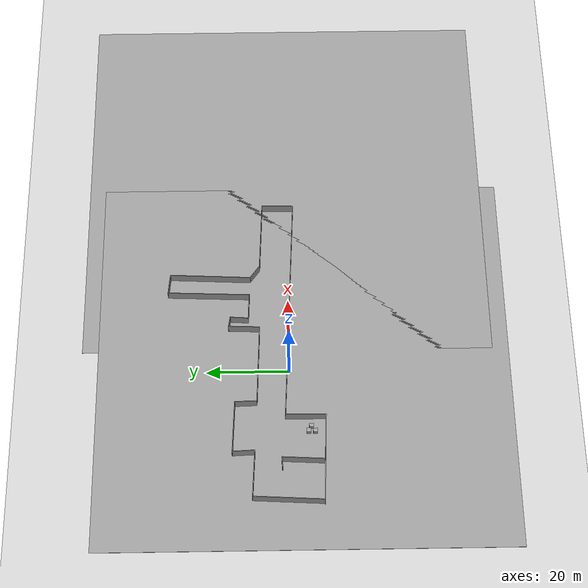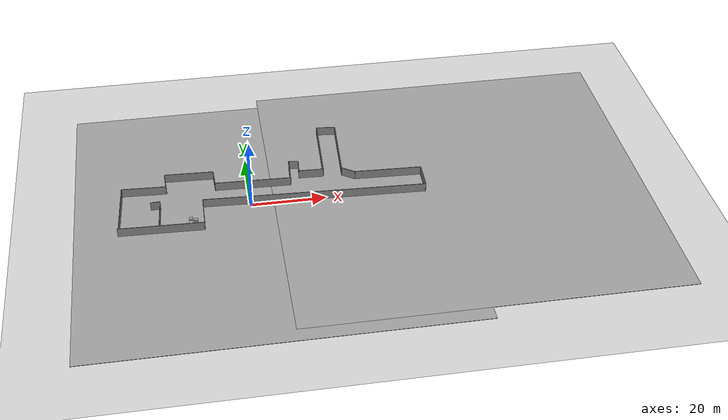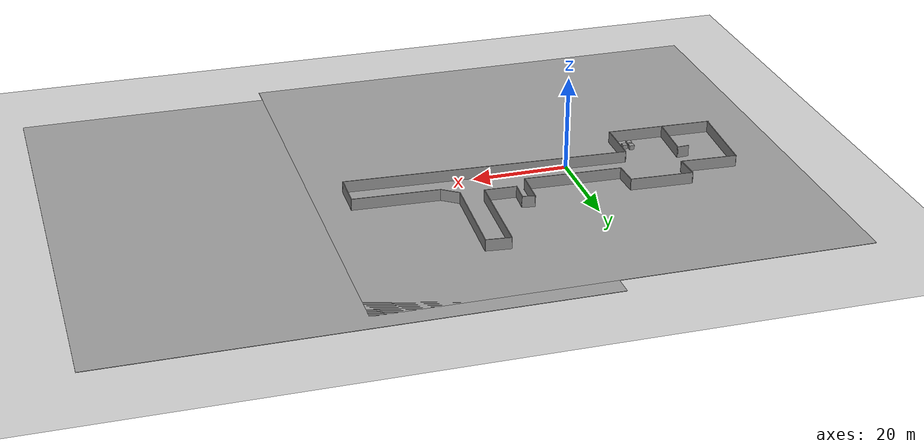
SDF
<sdf version="1.7">
 <world name="default">
  <light name="sun" type="directional">
   <pose>0 0 10 0 -0 0</pose>
   <diffuse>0.8 0.8 0.8 1</diffuse>
   <specular>0.2 0.2 0.2 1</specular>
   <attenuation>
    <range>1000</range>
    <constant>0.9</constant>
    <linear>0.01</linear>
    <quadratic>0.001</quadratic>
   </attenuation>
   <direction>-0.5 0.1 -0.9</direction>
   <spot><inner_angle>0</inner_angle><outer_angle>0</outer_angle><falloff>0</falloff></spot>
  </light>
  <model name="ground_plane">
   <pose>8 0 0 0 -0 0</pose>
   <static>1</static>
   <link name="link">
    <collision name="collision">
     <geometry><plane><normal>0 0 1</normal><size>100 100</size></plane></geometry>
     <surface><friction><ode><mu>100</mu><mu2>50</mu2></ode></friction></surface>
    </collision>
    <visual name="visual">
     <cast_shadows>0</cast_shadows>
     <geometry><plane><normal>0 0 1</normal><size>100 100</size></plane></geometry>
     <material>
      <script><uri>file://media/materials/scripts/gazebo.material</uri><name>Gazebo/Grey</name></script>
     </material>
    </visual>
   </link>
  </model>
  <gravity>0 0 -9.8</gravity>
  <magnetic_field>6e-06 2.3e-05 -4.2e-05</magnetic_field>
  <atmosphere type="adiabatic"/>
  <physics type="ode">
   <max_step_size>0.001</max_step_size>
   <real_time_factor>1</real_time_factor>
   <real_time_update_rate>1000</real_time_update_rate>
  </physics>
  <scene><ambient>0.4 0.4 0.4 1</ambient><background>0.7 0.7 0.7 1</background><shadows>1</shadows></scene>
  <audio><device>default</device></audio>
  <spherical_coordinates>
   <surface_model>EARTH_WGS84</surface_model>
   <latitude_deg>0</latitude_deg>
   <longitude_deg>0</longitude_deg>
   <elevation>0</elevation>
   <heading_deg>0</heading_deg>
  </spherical_coordinates>
  <model name="ground_plane_0">
   <static>1</static>
   <link name="link">
    <collision name="collision">
     <geometry><plane><normal>0 0 1</normal><size>100 100</size></plane></geometry>
     <surface><friction><ode><mu>100</mu><mu2>50</mu2></ode></friction></surface>
    </collision>
    <visual name="visual">
     <cast_shadows>0</cast_shadows>
     <geometry><plane><normal>0 0 1</normal><size>100 100</size></plane></geometry>
     <material>
      <script><uri>file://media/materials/scripts/gazebo.material</uri><name>Gazebo/Grey</name></script>
     </material>
    </visual>
   </link>
   <pose>56 0.336309 0 0 -0 0</pose>
  </model>
  <model name="L1building">
   <link name="Wall_0">
    <pose>-40.3079 -9.93824 0 0 -0 1.51317</pose>
    <visual name="Wall_0_Visual">
     <pose>0 0 1.25 0 -0 0</pose>
     <geometry><box><size>16.9123 0.15 2.5</size></box></geometry>
     <material>
      <script><uri>file://media/materials/scripts/gazebo.material</uri><name>Gazebo/Grey</name></script>
      <ambient>1 1 1 1</ambient>
      <shader type="pixel"/>
     </material>
     <meta><layer>0</layer></meta>
    </visual>
    <collision name="Wall_0_Collision">
     <pose>0 0 1.25 0 -0 0</pose>
     <geometry><box><size>16.9123 0.15 2.5</size></box></geometry>
     <surface>
      <friction>
       <ode><mu>1</mu><mu2>1</mu2><fdir1>0 0 0</fdir1><slip1>0</slip1><slip2>0</slip2></ode>
       <torsional>
        <coefficient>1</coefficient>
        <patch_radius>0</patch_radius>
        <surface_radius>0</surface_radius>
        <use_patch_radius>1</use_patch_radius>
        <ode><slip>0</slip></ode>
       </torsional>
      </friction>
      <bounce><restitution_coefficient>0</restitution_coefficient><threshold>1e+06</threshold></bounce>
      <contact>
       <collide_without_contact>0</collide_without_contact>
       <collide_without_contact_bitmask>1</collide_without_contact_bitmask>
       <collide_bitmask>1</collide_bitmask>
       <ode>
        <soft_cfm>0</soft_cfm>
        <soft_erp>0.2</soft_erp>
        <kp>1e+13</kp>
        <kd>1</kd>
        <max_vel>0.01</max_vel>
        <min_depth>0</min_depth>
       </ode>
       <bullet>
        <split_impulse>1</split_impulse>
        <split_impulse_penetration_threshold>-0.01</split_impulse_penetration_threshold>
        <soft_cfm>0</soft_cfm>
        <soft_erp>0.2</soft_erp>
        <kp>1e+13</kp>
        <kd>1</kd>
       </bullet>
      </contact>
     </surface>
    </collision>
   </link>
   <link name="Wall_1">
    <pose>-33.9118 -1.85259 0 0 0 -0.047583</pose>
    <visual name="Wall_1_Visual">
     <pose>0 0 1.25 0 -0 0</pose>
     <geometry><box><size>11.9902 0.15 2.5</size></box></geometry>
     <material>
      <script><uri>file://media/materials/scripts/gazebo.material</uri><name>Gazebo/Grey</name></script>
      <ambient>1 1 1 1</ambient>
      <shader type="pixel"/>
     </material>
     <meta><layer>0</layer></meta>
    </visual>
    <collision name="Wall_1_Collision">
     <pose>0 0 1.25 0 -0 0</pose>
     <geometry><box><size>11.9902 0.15 2.5</size></box></geometry>
     <surface>
      <friction>
       <ode><mu>1</mu><mu2>1</mu2><fdir1>0 0 0</fdir1><slip1>0</slip1><slip2>0</slip2></ode>
       <torsional>
        <coefficient>1</coefficient>
        <patch_radius>0</patch_radius>
        <surface_radius>0</surface_radius>
        <use_patch_radius>1</use_patch_radius>
        <ode><slip>0</slip></ode>
       </torsional>
      </friction>
      <bounce><restitution_coefficient>0</restitution_coefficient><threshold>1e+06</threshold></bounce>
      <contact>
       <collide_without_contact>0</collide_without_contact>
       <collide_without_contact_bitmask>1</collide_without_contact_bitmask>
       <collide_bitmask>1</collide_bitmask>
       <ode>
        <soft_cfm>0</soft_cfm>
        <soft_erp>0.2</soft_erp>
        <kp>1e+13</kp>
        <kd>1</kd>
        <max_vel>0.01</max_vel>
        <min_depth>0</min_depth>
       </ode>
       <bullet>
        <split_impulse>1</split_impulse>
        <split_impulse_penetration_threshold>-0.01</split_impulse_penetration_threshold>
        <soft_cfm>0</soft_cfm>
        <soft_erp>0.2</soft_erp>
        <kp>1e+13</kp>
        <kd>1</kd>
       </bullet>
      </contact>
     </surface>
    </collision>
   </link>
   <link name="Wall_10">
    <pose>15.0447 9.0892 0 0 -0 1.53066</pose>
    <visual name="Wall_10_Visual">
     <pose>0 0 1.25 0 -0 0</pose>
     <geometry><box><size>20.1993 0.15 2.5</size></box></geometry>
     <material>
      <script><uri>file://media/materials/scripts/gazebo.material</uri><name>Gazebo/Grey</name></script>
      <ambient>1 1 1 1</ambient>
      <shader type="pixel"/>
     </material>
     <meta><layer>0</layer></meta>
    </visual>
    <collision name="Wall_10_Collision">
     <pose>0 0 1.25 0 -0 0</pose>
     <geometry><box><size>20.1993 0.15 2.5</size></box></geometry>
     <surface>
      <friction>
       <ode><mu>1</mu><mu2>1</mu2><fdir1>0 0 0</fdir1><slip1>0</slip1><slip2>0</slip2></ode>
       <torsional>
        <coefficient>1</coefficient>
        <patch_radius>0</patch_radius>
        <surface_radius>0</surface_radius>
        <use_patch_radius>1</use_patch_radius>
        <ode><slip>0</slip></ode>
       </torsional>
      </friction>
      <bounce><restitution_coefficient>0</restitution_coefficient><threshold>1e+06</threshold></bounce>
      <contact>
       <collide_without_contact>0</collide_without_contact>
       <collide_without_contact_bitmask>1</collide_without_contact_bitmask>
       <collide_bitmask>1</collide_bitmask>
       <ode>
        <soft_cfm>0</soft_cfm>
        <soft_erp>0.2</soft_erp>
        <kp>1e+13</kp>
        <kd>1</kd>
        <max_vel>0.01</max_vel>
        <min_depth>0</min_depth>
       </ode>
       <bullet>
        <split_impulse>1</split_impulse>
        <split_impulse_penetration_threshold>-0.01</split_impulse_penetration_threshold>
        <soft_cfm>0</soft_cfm>
        <soft_erp>0.2</soft_erp>
        <kp>1e+13</kp>
        <kd>1</kd>
       </bullet>
      </contact>
     </surface>
    </collision>
   </link>
   <link name="Wall_11">
    <pose>18.0215 18.8644 0 0 0 -0.093477</pose>
    <visual name="Wall_11_Visual">
     <pose>0 0 1.25 0 -0 0</pose>
     <geometry><box><size>5.32165 0.15 2.5</size></box></geometry>
     <material>
      <script><uri>file://media/materials/scripts/gazebo.material</uri><name>Gazebo/Grey</name></script>
      <ambient>1 1 1 1</ambient>
      <shader type="pixel"/>
     </material>
     <meta><layer>0</layer></meta>
    </visual>
    <collision name="Wall_11_Collision">
     <pose>0 0 1.25 0 -0 0</pose>
     <geometry><box><size>5.32165 0.15 2.5</size></box></geometry>
     <surface>
      <friction>
       <ode><mu>1</mu><mu2>1</mu2><fdir1>0 0 0</fdir1><slip1>0</slip1><slip2>0</slip2></ode>
       <torsional>
        <coefficient>1</coefficient>
        <patch_radius>0</patch_radius>
        <surface_radius>0</surface_radius>
        <use_patch_radius>1</use_patch_radius>
        <ode><slip>0</slip></ode>
       </torsional>
      </friction>
      <bounce><restitution_coefficient>0</restitution_coefficient><threshold>1e+06</threshold></bounce>
      <contact>
       <collide_without_contact>0</collide_without_contact>
       <collide_without_contact_bitmask>1</collide_without_contact_bitmask>
       <collide_bitmask>1</collide_bitmask>
       <ode>
        <soft_cfm>0</soft_cfm>
        <soft_erp>0.2</soft_erp>
        <kp>1e+13</kp>
        <kd>1</kd>
        <max_vel>0.01</max_vel>
        <min_depth>0</min_depth>
       </ode>
       <bullet>
        <split_impulse>1</split_impulse>
        <split_impulse_penetration_threshold>-0.01</split_impulse_penetration_threshold>
        <soft_cfm>0</soft_cfm>
        <soft_erp>0.2</soft_erp>
        <kp>1e+13</kp>
        <kd>1</kd>
       </bullet>
      </contact>
     </surface>
    </collision>
   </link>
   <link name="Wall_12">
    <pose>20.1133 8.72715 0 0 0 -1.61954</pose>
    <visual name="Wall_12_Visual">
     <pose>0 0 1.25 0 -0 0</pose>
     <geometry><box><size>19.9653 0.15 2.5</size></box></geometry>
     <material>
      <script><uri>file://media/materials/scripts/gazebo.material</uri><name>Gazebo/Grey</name></script>
      <ambient>1 1 1 1</ambient>
      <shader type="pixel"/>
     </material>
     <meta><layer>0</layer></meta>
    </visual>
    <collision name="Wall_12_Collision">
     <pose>0 0 1.25 0 -0 0</pose>
     <geometry><box><size>19.9653 0.15 2.5</size></box></geometry>
     <surface>
      <friction>
       <ode><mu>1</mu><mu2>1</mu2><fdir1>0 0 0</fdir1><slip1>0</slip1><slip2>0</slip2></ode>
       <torsional>
        <coefficient>1</coefficient>
        <patch_radius>0</patch_radius>
        <surface_radius>0</surface_radius>
        <use_patch_radius>1</use_patch_radius>
        <ode><slip>0</slip></ode>
       </torsional>
      </friction>
      <bounce><restitution_coefficient>0</restitution_coefficient><threshold>1e+06</threshold></bounce>
      <contact>
       <collide_without_contact>0</collide_without_contact>
       <collide_without_contact_bitmask>1</collide_without_contact_bitmask>
       <collide_bitmask>1</collide_bitmask>
       <ode>
        <soft_cfm>0</soft_cfm>
        <soft_erp>0.2</soft_erp>
        <kp>1e+13</kp>
        <kd>1</kd>
        <max_vel>0.01</max_vel>
        <min_depth>0</min_depth>
       </ode>
       <bullet>
        <split_impulse>1</split_impulse>
        <split_impulse_penetration_threshold>-0.01</split_impulse_penetration_threshold>
        <soft_cfm>0</soft_cfm>
        <soft_erp>0.2</soft_erp>
        <kp>1e+13</kp>
        <kd>1</kd>
       </bullet>
      </contact>
     </surface>
    </collision>
   </link>
   <link name="Wall_13">
    <pose>21.2799 -2.33531 0 0 0 -0.61562</pose>
    <visual name="Wall_13_Visual">
     <pose>0 0 1.25 0 -0 0</pose>
     <geometry><box><size>4.19038 0.15 2.5</size></box></geometry>
     <material>
      <script><uri>file://media/materials/scripts/gazebo.material</uri><name>Gazebo/Grey</name></script>
      <ambient>1 1 1 1</ambient>
      <shader type="pixel"/>
     </material>
     <meta><layer>0</layer></meta>
    </visual>
    <collision name="Wall_13_Collision">
     <pose>0 0 1.25 0 -0 0</pose>
     <geometry><box><size>4.19038 0.15 2.5</size></box></geometry>
     <surface>
      <friction>
       <ode><mu>1</mu><mu2>1</mu2><fdir1>0 0 0</fdir1><slip1>0</slip1><slip2>0</slip2></ode>
       <torsional>
        <coefficient>1</coefficient>
        <patch_radius>0</patch_radius>
        <surface_radius>0</surface_radius>
        <use_patch_radius>1</use_patch_radius>
        <ode><slip>0</slip></ode>
       </torsional>
      </friction>
      <bounce><restitution_coefficient>0</restitution_coefficient><threshold>1e+06</threshold></bounce>
      <contact>
       <collide_without_contact>0</collide_without_contact>
       <collide_without_contact_bitmask>1</collide_without_contact_bitmask>
       <collide_bitmask>1</collide_bitmask>
       <ode>
        <soft_cfm>0</soft_cfm>
        <soft_erp>0.2</soft_erp>
        <kp>1e+13</kp>
        <kd>1</kd>
        <max_vel>0.01</max_vel>
        <min_depth>0</min_depth>
       </ode>
       <bullet>
        <split_impulse>1</split_impulse>
        <split_impulse_penetration_threshold>-0.01</split_impulse_penetration_threshold>
        <soft_cfm>0</soft_cfm>
        <soft_erp>0.2</soft_erp>
        <kp>1e+13</kp>
        <kd>1</kd>
       </bullet>
      </contact>
     </surface>
    </collision>
   </link>
   <link name="Wall_14">
    <pose>31.9803 -3.86394 0 0 0 -0.039979</pose>
    <visual name="Wall_14_Visual">
     <pose>0 0 1.25 0 -0 0</pose>
     <geometry><box><size>18.2667 0.15 2.5</size></box></geometry>
     <material>
      <script><uri>file://media/materials/scripts/gazebo.material</uri><name>Gazebo/Grey</name></script>
      <ambient>1 1 1 1</ambient>
      <shader type="pixel"/>
     </material>
     <meta><layer>0</layer></meta>
    </visual>
    <collision name="Wall_14_Collision">
     <pose>0 0 1.25 0 -0 0</pose>
     <geometry><box><size>18.2667 0.15 2.5</size></box></geometry>
     <surface>
      <friction>
       <ode><mu>1</mu><mu2>1</mu2><fdir1>0 0 0</fdir1><slip1>0</slip1><slip2>0</slip2></ode>
       <torsional>
        <coefficient>1</coefficient>
        <patch_radius>0</patch_radius>
        <surface_radius>0</surface_radius>
        <use_patch_radius>1</use_patch_radius>
        <ode><slip>0</slip></ode>
       </torsional>
      </friction>
      <bounce><restitution_coefficient>0</restitution_coefficient><threshold>1e+06</threshold></bounce>
      <contact>
       <collide_without_contact>0</collide_without_contact>
       <collide_without_contact_bitmask>1</collide_without_contact_bitmask>
       <collide_bitmask>1</collide_bitmask>
       <ode>
        <soft_cfm>0</soft_cfm>
        <soft_erp>0.2</soft_erp>
        <kp>1e+13</kp>
        <kd>1</kd>
        <max_vel>0.01</max_vel>
        <min_depth>0</min_depth>
       </ode>
       <bullet>
        <split_impulse>1</split_impulse>
        <split_impulse_penetration_threshold>-0.01</split_impulse_penetration_threshold>
        <soft_cfm>0</soft_cfm>
        <soft_erp>0.2</soft_erp>
        <kp>1e+13</kp>
        <kd>1</kd>
       </bullet>
      </contact>
     </surface>
    </collision>
   </link>
   <link name="Wall_15">
    <pose>40.951 -8.12802 0 0 0 -1.59141</pose>
    <visual name="Wall_15_Visual">
     <pose>0 0 1.25 0 -0 0</pose>
     <geometry><box><size>7.95573 0.15 2.5</size></box></geometry>
     <material>
      <script><uri>file://media/materials/scripts/gazebo.material</uri><name>Gazebo/Grey</name></script>
      <ambient>1 1 1 1</ambient>
      <shader type="pixel"/>
     </material>
     <meta><layer>0</layer></meta>
    </visual>
    <collision name="Wall_15_Collision">
     <pose>0 0 1.25 0 -0 0</pose>
     <geometry><box><size>7.95573 0.15 2.5</size></box></geometry>
     <surface>
      <friction>
       <ode><mu>1</mu><mu2>1</mu2><fdir1>0 0 0</fdir1><slip1>0</slip1><slip2>0</slip2></ode>
       <torsional>
        <coefficient>1</coefficient>
        <patch_radius>0</patch_radius>
        <surface_radius>0</surface_radius>
        <use_patch_radius>1</use_patch_radius>
        <ode><slip>0</slip></ode>
       </torsional>
      </friction>
      <bounce><restitution_coefficient>0</restitution_coefficient><threshold>1e+06</threshold></bounce>
      <contact>
       <collide_without_contact>0</collide_without_contact>
       <collide_without_contact_bitmask>1</collide_without_contact_bitmask>
       <collide_bitmask>1</collide_bitmask>
       <ode>
        <soft_cfm>0</soft_cfm>
        <soft_erp>0.2</soft_erp>
        <kp>1e+13</kp>
        <kd>1</kd>
        <max_vel>0.01</max_vel>
        <min_depth>0</min_depth>
       </ode>
       <bullet>
        <split_impulse>1</split_impulse>
        <split_impulse_penetration_threshold>-0.01</split_impulse_penetration_threshold>
        <soft_cfm>0</soft_cfm>
        <soft_erp>0.2</soft_erp>
        <kp>1e+13</kp>
        <kd>1</kd>
       </bullet>
      </contact>
     </surface>
    </collision>
   </link>
   <link name="Wall_16">
    <pose>11.1024 -10.7428 0 0 -0 3.09838</pose>
    <visual name="Wall_16_Visual">
     <pose>0 0 1.25 0 -0 0</pose>
     <geometry><box><size>59.7418 0.15 2.5</size></box></geometry>
     <material>
      <script><uri>file://media/materials/scripts/gazebo.material</uri><name>Gazebo/Grey</name></script>
      <ambient>1 1 1 1</ambient>
      <shader type="pixel"/>
     </material>
     <meta><layer>0</layer></meta>
    </visual>
    <collision name="Wall_16_Collision">
     <pose>0 0 1.25 0 -0 0</pose>
     <geometry><box><size>59.7418 0.15 2.5</size></box></geometry>
     <surface>
      <friction>
       <ode><mu>1</mu><mu2>1</mu2><fdir1>0 0 0</fdir1><slip1>0</slip1><slip2>0</slip2></ode>
       <torsional>
        <coefficient>1</coefficient>
        <patch_radius>0</patch_radius>
        <surface_radius>0</surface_radius>
        <use_patch_radius>1</use_patch_radius>
        <ode><slip>0</slip></ode>
       </torsional>
      </friction>
      <bounce><restitution_coefficient>0</restitution_coefficient><threshold>1e+06</threshold></bounce>
      <contact>
       <collide_without_contact>0</collide_without_contact>
       <collide_without_contact_bitmask>1</collide_without_contact_bitmask>
       <collide_bitmask>1</collide_bitmask>
       <ode>
        <soft_cfm>0</soft_cfm>
        <soft_erp>0.2</soft_erp>
        <kp>1e+13</kp>
        <kd>1</kd>
        <max_vel>0.01</max_vel>
        <min_depth>0</min_depth>
       </ode>
       <bullet>
        <split_impulse>1</split_impulse>
        <split_impulse_penetration_threshold>-0.01</split_impulse_penetration_threshold>
        <soft_cfm>0</soft_cfm>
        <soft_erp>0.2</soft_erp>
        <kp>1e+13</kp>
        <kd>1</kd>
       </bullet>
      </contact>
     </surface>
    </collision>
   </link>
   <link name="Wall_17">
    <pose>-18.7059 -14.2828 0 0 0 -1.57913</pose>
    <visual name="Wall_17_Visual">
     <pose>0 0 1.25 0 -0 0</pose>
     <geometry><box><size>9.80485 0.15 2.5</size></box></geometry>
     <material>
      <script><uri>file://media/materials/scripts/gazebo.material</uri><name>Gazebo/Grey</name></script>
      <ambient>1 1 1 1</ambient>
      <shader type="pixel"/>
     </material>
     <meta><layer>0</layer></meta>
    </visual>
    <collision name="Wall_17_Collision">
     <pose>0 0 1.25 0 -0 0</pose>
     <geometry><box><size>9.80485 0.15 2.5</size></box></geometry>
     <surface>
      <friction>
       <ode><mu>1</mu><mu2>1</mu2><fdir1>0 0 0</fdir1><slip1>0</slip1><slip2>0</slip2></ode>
       <torsional>
        <coefficient>1</coefficient>
        <patch_radius>0</patch_radius>
        <surface_radius>0</surface_radius>
        <use_patch_radius>1</use_patch_radius>
        <ode><slip>0</slip></ode>
       </torsional>
      </friction>
      <bounce><restitution_coefficient>0</restitution_coefficient><threshold>1e+06</threshold></bounce>
      <contact>
       <collide_without_contact>0</collide_without_contact>
       <collide_without_contact_bitmask>1</collide_without_contact_bitmask>
       <collide_bitmask>1</collide_bitmask>
       <ode>
        <soft_cfm>0</soft_cfm>
        <soft_erp>0.2</soft_erp>
        <kp>1e+13</kp>
        <kd>1</kd>
        <max_vel>0.01</max_vel>
        <min_depth>0</min_depth>
       </ode>
       <bullet>
        <split_impulse>1</split_impulse>
        <split_impulse_penetration_threshold>-0.01</split_impulse_penetration_threshold>
        <soft_cfm>0</soft_cfm>
        <soft_erp>0.2</soft_erp>
        <kp>1e+13</kp>
        <kd>1</kd>
       </bullet>
      </contact>
     </surface>
    </collision>
   </link>
   <link name="Wall_18">
    <pose>-29.889 -18.748 0 0 -0 3.10911</pose>
    <visual name="Wall_18_Visual">
     <pose>0 0 1.25 0 -0 0</pose>
     <geometry><box><size>22.4476 0.15 2.5</size></box></geometry>
     <material>
      <script><uri>file://media/materials/scripts/gazebo.material</uri><name>Gazebo/Grey</name></script>
      <ambient>1 1 1 1</ambient>
      <shader type="pixel"/>
     </material>
     <meta><layer>0</layer></meta>
    </visual>
    <collision name="Wall_18_Collision">
     <pose>0 0 1.25 0 -0 0</pose>
     <geometry><box><size>22.4476 0.15 2.5</size></box></geometry>
     <surface>
      <friction>
       <ode><mu>1</mu><mu2>1</mu2><fdir1>0 0 0</fdir1><slip1>0</slip1><slip2>0</slip2></ode>
       <torsional>
        <coefficient>1</coefficient>
        <patch_radius>0</patch_radius>
        <surface_radius>0</surface_radius>
        <use_patch_radius>1</use_patch_radius>
        <ode><slip>0</slip></ode>
       </torsional>
      </friction>
      <bounce><restitution_coefficient>0</restitution_coefficient><threshold>1e+06</threshold></bounce>
      <contact>
       <collide_without_contact>0</collide_without_contact>
       <collide_without_contact_bitmask>1</collide_without_contact_bitmask>
       <collide_bitmask>1</collide_bitmask>
       <ode>
        <soft_cfm>0</soft_cfm>
        <soft_erp>0.2</soft_erp>
        <kp>1e+13</kp>
        <kd>1</kd>
        <max_vel>0.01</max_vel>
        <min_depth>0</min_depth>
       </ode>
       <bullet>
        <split_impulse>1</split_impulse>
        <split_impulse_penetration_threshold>-0.01</split_impulse_penetration_threshold>
        <soft_cfm>0</soft_cfm>
        <soft_erp>0.2</soft_erp>
        <kp>1e+13</kp>
        <kd>1</kd>
       </bullet>
      </contact>
     </surface>
    </collision>
   </link>
   <link name="Wall_2">
    <pose>-28.119 0.520815 0 0 -0 1.61622</pose>
    <visual name="Wall_2_Visual">
     <pose>0 0 1.25 0 -0 0</pose>
     <geometry><box><size>5.46547 0.15 2.5</size></box></geometry>
     <material>
      <script><uri>file://media/materials/scripts/gazebo.material</uri><name>Gazebo/Grey</name></script>
      <ambient>1 1 1 1</ambient>
      <shader type="pixel"/>
     </material>
     <meta><layer>0</layer></meta>
    </visual>
    <collision name="Wall_2_Collision">
     <pose>0 0 1.25 0 -0 0</pose>
     <geometry><box><size>5.46547 0.15 2.5</size></box></geometry>
     <surface>
      <friction>
       <ode><mu>1</mu><mu2>1</mu2><fdir1>0 0 0</fdir1><slip1>0</slip1><slip2>0</slip2></ode>
       <torsional>
        <coefficient>1</coefficient>
        <patch_radius>0</patch_radius>
        <surface_radius>0</surface_radius>
        <use_patch_radius>1</use_patch_radius>
        <ode><slip>0</slip></ode>
       </torsional>
      </friction>
      <bounce><restitution_coefficient>0</restitution_coefficient><threshold>1e+06</threshold></bounce>
      <contact>
       <collide_without_contact>0</collide_without_contact>
       <collide_without_contact_bitmask>1</collide_without_contact_bitmask>
       <collide_bitmask>1</collide_bitmask>
       <ode>
        <soft_cfm>0</soft_cfm>
        <soft_erp>0.2</soft_erp>
        <kp>1e+13</kp>
        <kd>1</kd>
        <max_vel>0.01</max_vel>
        <min_depth>0</min_depth>
       </ode>
       <bullet>
        <split_impulse>1</split_impulse>
        <split_impulse_penetration_threshold>-0.01</split_impulse_penetration_threshold>
        <soft_cfm>0</soft_cfm>
        <soft_erp>0.2</soft_erp>
        <kp>1e+13</kp>
        <kd>1</kd>
       </bullet>
      </contact>
     </surface>
    </collision>
   </link>
   <link name="Wall_20">
    <pose>-30.1304 -13.5185 0 0 -0 1.51486</pose>
    <visual name="Wall_20_Visual">
     <pose>0 0 1.25 0 -0 0</pose>
     <geometry><box><size>10.2225 0.15 2.5</size></box></geometry>
     <material>
      <script><uri>file://media/materials/scripts/gazebo.material</uri><name>Gazebo/Grey</name></script>
      <ambient>1 1 1 1</ambient>
      <shader type="pixel"/>
     </material>
     <meta><layer>0</layer></meta>
    </visual>
    <collision name="Wall_20_Collision">
     <pose>0 0 1.25 0 -0 0</pose>
     <geometry><box><size>10.2225 0.15 2.5</size></box></geometry>
     <surface>
      <friction>
       <ode><mu>1</mu><mu2>1</mu2><fdir1>0 0 0</fdir1><slip1>0</slip1><slip2>0</slip2></ode>
       <torsional>
        <coefficient>1</coefficient>
        <patch_radius>0</patch_radius>
        <surface_radius>0</surface_radius>
        <use_patch_radius>1</use_patch_radius>
        <ode><slip>0</slip></ode>
       </torsional>
      </friction>
      <bounce><restitution_coefficient>0</restitution_coefficient><threshold>1e+06</threshold></bounce>
      <contact>
       <collide_without_contact>0</collide_without_contact>
       <collide_without_contact_bitmask>1</collide_without_contact_bitmask>
       <collide_bitmask>1</collide_bitmask>
       <ode>
        <soft_cfm>0</soft_cfm>
        <soft_erp>0.2</soft_erp>
        <kp>1e+13</kp>
        <kd>1</kd>
        <max_vel>0.01</max_vel>
        <min_depth>0</min_depth>
       </ode>
       <bullet>
        <split_impulse>1</split_impulse>
        <split_impulse_penetration_threshold>-0.01</split_impulse_penetration_threshold>
        <soft_cfm>0</soft_cfm>
        <soft_erp>0.2</soft_erp>
        <kp>1e+13</kp>
        <kd>1</kd>
       </bullet>
      </contact>
     </surface>
    </collision>
   </link>
   <link name="Wall_21">
    <pose>-31.0556 -8.57052 0 0 0 -3.07502</pose>
    <visual name="Wall_21_Visual">
     <pose>0 0 1.25 0 -0 0</pose>
     <geometry><box><size>2.56899 0.15 2.5</size></box></geometry>
     <material>
      <script><uri>file://media/materials/scripts/gazebo.material</uri><name>Gazebo/Grey</name></script>
      <ambient>1 1 1 1</ambient>
      <shader type="pixel"/>
     </material>
     <meta><layer>0</layer></meta>
    </visual>
    <collision name="Wall_21_Collision">
     <pose>0 0 1.25 0 -0 0</pose>
     <geometry><box><size>2.56899 0.15 2.5</size></box></geometry>
     <surface>
      <friction>
       <ode><mu>1</mu><mu2>1</mu2><fdir1>0 0 0</fdir1><slip1>0</slip1><slip2>0</slip2></ode>
       <torsional>
        <coefficient>1</coefficient>
        <patch_radius>0</patch_radius>
        <surface_radius>0</surface_radius>
        <use_patch_radius>1</use_patch_radius>
        <ode><slip>0</slip></ode>
       </torsional>
      </friction>
      <bounce><restitution_coefficient>0</restitution_coefficient><threshold>1e+06</threshold></bounce>
      <contact>
       <collide_without_contact>0</collide_without_contact>
       <collide_without_contact_bitmask>1</collide_without_contact_bitmask>
       <collide_bitmask>1</collide_bitmask>
       <ode>
        <soft_cfm>0</soft_cfm>
        <soft_erp>0.2</soft_erp>
        <kp>1e+13</kp>
        <kd>1</kd>
        <max_vel>0.01</max_vel>
        <min_depth>0</min_depth>
       </ode>
       <bullet>
        <split_impulse>1</split_impulse>
        <split_impulse_penetration_threshold>-0.01</split_impulse_penetration_threshold>
        <soft_cfm>0</soft_cfm>
        <soft_erp>0.2</soft_erp>
        <kp>1e+13</kp>
        <kd>1</kd>
       </bullet>
      </contact>
     </surface>
    </collision>
   </link>
   <link name="Wall_3">
    <pose>-21.6827 2.89422 0 0 0 -0.042918</pose>
    <visual name="Wall_3_Visual">
     <pose>0 0 1.25 0 -0 0</pose>
     <geometry><box><size>13.2761 0.15 2.5</size></box></geometry>
     <material>
      <script><uri>file://media/materials/scripts/gazebo.material</uri><name>Gazebo/Grey</name></script>
      <ambient>1 1 1 1</ambient>
      <shader type="pixel"/>
     </material>
     <meta><layer>0</layer></meta>
    </visual>
    <collision name="Wall_3_Collision">
     <pose>0 0 1.25 0 -0 0</pose>
     <geometry><box><size>13.2761 0.15 2.5</size></box></geometry>
     <surface>
      <friction>
       <ode><mu>1</mu><mu2>1</mu2><fdir1>0 0 0</fdir1><slip1>0</slip1><slip2>0</slip2></ode>
       <torsional>
        <coefficient>1</coefficient>
        <patch_radius>0</patch_radius>
        <surface_radius>0</surface_radius>
        <use_patch_radius>1</use_patch_radius>
        <ode><slip>0</slip></ode>
       </torsional>
      </friction>
      <bounce><restitution_coefficient>0</restitution_coefficient><threshold>1e+06</threshold></bounce>
      <contact>
       <collide_without_contact>0</collide_without_contact>
       <collide_without_contact_bitmask>1</collide_without_contact_bitmask>
       <collide_bitmask>1</collide_bitmask>
       <ode>
        <soft_cfm>0</soft_cfm>
        <soft_erp>0.2</soft_erp>
        <kp>1e+13</kp>
        <kd>1</kd>
        <max_vel>0.01</max_vel>
        <min_depth>0</min_depth>
       </ode>
       <bullet>
        <split_impulse>1</split_impulse>
        <split_impulse_penetration_threshold>-0.01</split_impulse_penetration_threshold>
        <soft_cfm>0</soft_cfm>
        <soft_erp>0.2</soft_erp>
        <kp>1e+13</kp>
        <kd>1</kd>
       </bullet>
      </contact>
     </surface>
    </collision>
   </link>
   <link name="Wall_4">
    <pose>-15.0452 -0.042365 0 0 0 -1.5405</pose>
    <visual name="Wall_4_Visual">
     <pose>0 0 1.25 0 -0 0</pose>
     <geometry><box><size>5.46242 0.15 2.5</size></box></geometry>
     <material>
      <script><uri>file://media/materials/scripts/gazebo.material</uri><name>Gazebo/Grey</name></script>
      <ambient>1 1 1 1</ambient>
      <shader type="pixel"/>
     </material>
     <meta><layer>0</layer></meta>
    </visual>
    <collision name="Wall_4_Collision">
     <pose>0 0 1.25 0 -0 0</pose>
     <geometry><box><size>5.46242 0.15 2.5</size></box></geometry>
     <surface>
      <friction>
       <ode><mu>1</mu><mu2>1</mu2><fdir1>0 0 0</fdir1><slip1>0</slip1><slip2>0</slip2></ode>
       <torsional>
        <coefficient>1</coefficient>
        <patch_radius>0</patch_radius>
        <surface_radius>0</surface_radius>
        <use_patch_radius>1</use_patch_radius>
        <ode><slip>0</slip></ode>
       </torsional>
      </friction>
      <bounce><restitution_coefficient>0</restitution_coefficient><threshold>1e+06</threshold></bounce>
      <contact>
       <collide_without_contact>0</collide_without_contact>
       <collide_without_contact_bitmask>1</collide_without_contact_bitmask>
       <collide_bitmask>1</collide_bitmask>
       <ode>
        <soft_cfm>0</soft_cfm>
        <soft_erp>0.2</soft_erp>
        <kp>1e+13</kp>
        <kd>1</kd>
        <max_vel>0.01</max_vel>
        <min_depth>0</min_depth>
       </ode>
       <bullet>
        <split_impulse>1</split_impulse>
        <split_impulse_penetration_threshold>-0.01</split_impulse_penetration_threshold>
        <soft_cfm>0</soft_cfm>
        <soft_erp>0.2</soft_erp>
        <kp>1e+13</kp>
        <kd>1</kd>
       </bullet>
      </contact>
     </surface>
    </collision>
   </link>
   <link name="Wall_5">
    <pose>-4.7873 -3.0594 0 0 0 -0.035558</pose>
    <visual name="Wall_5_Visual">
     <pose>0 0 1.25 0 -0 0</pose>
     <geometry><box><size>20.5178 0.15 2.5</size></box></geometry>
     <material>
      <script><uri>file://media/materials/scripts/gazebo.material</uri><name>Gazebo/Grey</name></script>
      <ambient>1 1 1 1</ambient>
      <shader type="pixel"/>
     </material>
     <meta><layer>0</layer></meta>
    </visual>
    <collision name="Wall_5_Collision">
     <pose>0 0 1.25 0 -0 0</pose>
     <geometry><box><size>20.5178 0.15 2.5</size></box></geometry>
     <surface>
      <friction>
       <ode><mu>1</mu><mu2>1</mu2><fdir1>0 0 0</fdir1><slip1>0</slip1><slip2>0</slip2></ode>
       <torsional>
        <coefficient>1</coefficient>
        <patch_radius>0</patch_radius>
        <surface_radius>0</surface_radius>
        <use_patch_radius>1</use_patch_radius>
        <ode><slip>0</slip></ode>
       </torsional>
      </friction>
      <bounce><restitution_coefficient>0</restitution_coefficient><threshold>1e+06</threshold></bounce>
      <contact>
       <collide_without_contact>0</collide_without_contact>
       <collide_without_contact_bitmask>1</collide_without_contact_bitmask>
       <collide_bitmask>1</collide_bitmask>
       <ode>
        <soft_cfm>0</soft_cfm>
        <soft_erp>0.2</soft_erp>
        <kp>1e+13</kp>
        <kd>1</kd>
        <max_vel>0.01</max_vel>
        <min_depth>0</min_depth>
       </ode>
       <bullet>
        <split_impulse>1</split_impulse>
        <split_impulse_penetration_threshold>-0.01</split_impulse_penetration_threshold>
        <soft_cfm>0</soft_cfm>
        <soft_erp>0.2</soft_erp>
        <kp>1e+13</kp>
        <kd>1</kd>
       </bullet>
      </contact>
     </surface>
    </collision>
   </link>
   <link name="Wall_6">
    <pose>5.55108 0.359906 0 0 -0 1.52827</pose>
    <visual name="Wall_6_Visual">
     <pose>0 0 1.25 0 -0 0</pose>
     <geometry><box><size>7.71955 0.15 2.5</size></box></geometry>
     <material>
      <script><uri>file://media/materials/scripts/gazebo.material</uri><name>Gazebo/Grey</name></script>
      <ambient>1 1 1 1</ambient>
      <shader type="pixel"/>
     </material>
     <meta><layer>0</layer></meta>
    </visual>
    <collision name="Wall_6_Collision">
     <pose>0 0 1.25 0 -0 0</pose>
     <geometry><box><size>7.71955 0.15 2.5</size></box></geometry>
     <surface>
      <friction>
       <ode><mu>1</mu><mu2>1</mu2><fdir1>0 0 0</fdir1><slip1>0</slip1><slip2>0</slip2></ode>
       <torsional>
        <coefficient>1</coefficient>
        <patch_radius>0</patch_radius>
        <surface_radius>0</surface_radius>
        <use_patch_radius>1</use_patch_radius>
        <ode><slip>0</slip></ode>
       </torsional>
      </friction>
      <bounce><restitution_coefficient>0</restitution_coefficient><threshold>1e+06</threshold></bounce>
      <contact>
       <collide_without_contact>0</collide_without_contact>
       <collide_without_contact_bitmask>1</collide_without_contact_bitmask>
       <collide_bitmask>1</collide_bitmask>
       <ode>
        <soft_cfm>0</soft_cfm>
        <soft_erp>0.2</soft_erp>
        <kp>1e+13</kp>
        <kd>1</kd>
        <max_vel>0.01</max_vel>
        <min_depth>0</min_depth>
       </ode>
       <bullet>
        <split_impulse>1</split_impulse>
        <split_impulse_penetration_threshold>-0.01</split_impulse_penetration_threshold>
        <soft_cfm>0</soft_cfm>
        <soft_erp>0.2</soft_erp>
        <kp>1e+13</kp>
        <kd>1</kd>
       </bullet>
      </contact>
     </surface>
    </collision>
   </link>
   <link name="Wall_7">
    <pose>6.99925 3.94012 0 0 0 -0.154997</pose>
    <visual name="Wall_7_Visual">
     <pose>0 0 1.25 0 -0 0</pose>
     <geometry><box><size>2.75577 0.15 2.5</size></box></geometry>
     <material>
      <script><uri>file://media/materials/scripts/gazebo.material</uri><name>Gazebo/Grey</name></script>
      <ambient>1 1 1 1</ambient>
      <shader type="pixel"/>
     </material>
     <meta><layer>0</layer></meta>
    </visual>
    <collision name="Wall_7_Collision">
     <pose>0 0 1.25 0 -0 0</pose>
     <geometry><box><size>2.75577 0.15 2.5</size></box></geometry>
     <surface>
      <friction>
       <ode><mu>1</mu><mu2>1</mu2><fdir1>0 0 0</fdir1><slip1>0</slip1><slip2>0</slip2></ode>
       <torsional>
        <coefficient>1</coefficient>
        <patch_radius>0</patch_radius>
        <surface_radius>0</surface_radius>
        <use_patch_radius>1</use_patch_radius>
        <ode><slip>0</slip></ode>
       </torsional>
      </friction>
      <bounce><restitution_coefficient>0</restitution_coefficient><threshold>1e+06</threshold></bounce>
      <contact>
       <collide_without_contact>0</collide_without_contact>
       <collide_without_contact_bitmask>1</collide_without_contact_bitmask>
       <collide_bitmask>1</collide_bitmask>
       <ode>
        <soft_cfm>0</soft_cfm>
        <soft_erp>0.2</soft_erp>
        <kp>1e+13</kp>
        <kd>1</kd>
        <max_vel>0.01</max_vel>
        <min_depth>0</min_depth>
       </ode>
       <bullet>
        <split_impulse>1</split_impulse>
        <split_impulse_penetration_threshold>-0.01</split_impulse_penetration_threshold>
        <soft_cfm>0</soft_cfm>
        <soft_erp>0.2</soft_erp>
        <kp>1e+13</kp>
        <kd>1</kd>
       </bullet>
      </contact>
     </surface>
    </collision>
   </link>
   <link name="Wall_8">
    <pose>8.12561 1.52649 0 0 0 -1.6434</pose>
    <visual name="Wall_8_Visual">
     <pose>0 0 1.25 0 -0 0</pose>
     <geometry><box><size>4.58667 0.15 2.5</size></box></geometry>
     <material>
      <script><uri>file://media/materials/scripts/gazebo.material</uri><name>Gazebo/Grey</name></script>
      <ambient>1 1 1 1</ambient>
      <shader type="pixel"/>
     </material>
     <meta><layer>0</layer></meta>
    </visual>
    <collision name="Wall_8_Collision">
     <pose>0 0 1.25 0 -0 0</pose>
     <geometry><box><size>4.58667 0.15 2.5</size></box></geometry>
     <surface>
      <friction>
       <ode><mu>1</mu><mu2>1</mu2><fdir1>0 0 0</fdir1><slip1>0</slip1><slip2>0</slip2></ode>
       <torsional>
        <coefficient>1</coefficient>
        <patch_radius>0</patch_radius>
        <surface_radius>0</surface_radius>
        <use_patch_radius>1</use_patch_radius>
        <ode><slip>0</slip></ode>
       </torsional>
      </friction>
      <bounce><restitution_coefficient>0</restitution_coefficient><threshold>1e+06</threshold></bounce>
      <contact>
       <collide_without_contact>0</collide_without_contact>
       <collide_without_contact_bitmask>1</collide_without_contact_bitmask>
       <collide_bitmask>1</collide_bitmask>
       <ode>
        <soft_cfm>0</soft_cfm>
        <soft_erp>0.2</soft_erp>
        <kp>1e+13</kp>
        <kd>1</kd>
        <max_vel>0.01</max_vel>
        <min_depth>0</min_depth>
       </ode>
       <bullet>
        <split_impulse>1</split_impulse>
        <split_impulse_penetration_threshold>-0.01</split_impulse_penetration_threshold>
        <soft_cfm>0</soft_cfm>
        <soft_erp>0.2</soft_erp>
        <kp>1e+13</kp>
        <kd>1</kd>
       </bullet>
      </contact>
     </surface>
    </collision>
   </link>
   <link name="Wall_9">
    <pose>11.3036 -0.806681 0 0 0 -0.036129</pose>
    <visual name="Wall_9_Visual">
     <pose>0 0 1.25 0 -0 0</pose>
     <geometry><box><size>6.83207 0.15 2.5</size></box></geometry>
     <material>
      <script><uri>file://media/materials/scripts/gazebo.material</uri><name>Gazebo/Grey</name></script>
      <ambient>1 1 1 1</ambient>
      <shader type="pixel"/>
     </material>
     <meta><layer>0</layer></meta>
    </visual>
    <collision name="Wall_9_Collision">
     <pose>0 0 1.25 0 -0 0</pose>
     <geometry><box><size>6.83207 0.15 2.5</size></box></geometry>
     <surface>
      <friction>
       <ode><mu>1</mu><mu2>1</mu2><fdir1>0 0 0</fdir1><slip1>0</slip1><slip2>0</slip2></ode>
       <torsional>
        <coefficient>1</coefficient>
        <patch_radius>0</patch_radius>
        <surface_radius>0</surface_radius>
        <use_patch_radius>1</use_patch_radius>
        <ode><slip>0</slip></ode>
       </torsional>
      </friction>
      <bounce><restitution_coefficient>0</restitution_coefficient><threshold>1e+06</threshold></bounce>
      <contact>
       <collide_without_contact>0</collide_without_contact>
       <collide_without_contact_bitmask>1</collide_without_contact_bitmask>
       <collide_bitmask>1</collide_bitmask>
       <ode>
        <soft_cfm>0</soft_cfm>
        <soft_erp>0.2</soft_erp>
        <kp>1e+13</kp>
        <kd>1</kd>
        <max_vel>0.01</max_vel>
        <min_depth>0</min_depth>
       </ode>
       <bullet>
        <split_impulse>1</split_impulse>
        <split_impulse_penetration_threshold>-0.01</split_impulse_penetration_threshold>
        <soft_cfm>0</soft_cfm>
        <soft_erp>0.2</soft_erp>
        <kp>1e+13</kp>
        <kd>1</kd>
       </bullet>
      </contact>
     </surface>
    </collision>
   </link>
   <model name="ground_plane">
    <static>1</static>
    <link name="link">
     <collision name="collision">
      <geometry><plane><normal>0 0 1</normal><size>100 100</size></plane></geometry>
      <surface><friction><ode><mu>100</mu><mu2>50</mu2></ode></friction></surface>
     </collision>
     <visual name="visual">
      <cast_shadows>0</cast_shadows>
      <geometry><plane><normal>0 0 1</normal><size>100 100</size></plane></geometry>
      <material>
       <script><uri>file://media/materials/scripts/gazebo.material</uri><name>Gazebo/Grey</name></script>
      </material>
     </visual>
    </link>
    <pose>-2.36105 -14.1262 0 0 -0 0</pose>
   </model>
   <static>1</static>
   <pose>5.95125 10.5265 0 0 -0 0</pose>
  </model>
  <model name="Untitled">
   <link name="link_0">
    <inertial>
     <mass>1</mass>
     <inertia>
      <ixx>0.166667</ixx>
      <ixy>0</ixy>
      <ixz>0</ixz>
      <iyy>0.166667</iyy>
      <iyz>0</iyz>
      <izz>0.166667</izz>
     </inertia>
    </inertial>
    <pose>-0.415192 0.730395 0 0 -0 0</pose>
    <visual name="visual">
     <geometry><box><size>1 1 1</size></box></geometry>
     <material>
      <lighting>1</lighting>
      <script><uri>file://media/materials/scripts/gazebo.material</uri><name>Gazebo/Grey</name></script>
      <shader type="pixel"/>
     </material>
    </visual>
    <collision name="collision">
     <geometry><box><size>1 1 1</size></box></geometry>
     <surface>
      <friction>
       <ode><mu>1</mu><mu2>1</mu2><fdir1>0 0 0</fdir1><slip1>0</slip1><slip2>0</slip2></ode>
       <torsional>
        <coefficient>1</coefficient>
        <patch_radius>0</patch_radius>
        <surface_radius>0</surface_radius>
        <use_patch_radius>1</use_patch_radius>
        <ode><slip>0</slip></ode>
       </torsional>
      </friction>
      <bounce><restitution_coefficient>0</restitution_coefficient><threshold>1e+06</threshold></bounce>
      <contact>
       <collide_without_contact>0</collide_without_contact>
       <collide_without_contact_bitmask>1</collide_without_contact_bitmask>
       <collide_bitmask>1</collide_bitmask>
       <ode>
        <soft_cfm>0</soft_cfm>
        <soft_erp>0.2</soft_erp>
        <kp>1e+13</kp>
        <kd>1</kd>
        <max_vel>0.01</max_vel>
        <min_depth>0</min_depth>
       </ode>
       <bullet>
        <split_impulse>1</split_impulse>
        <split_impulse_penetration_threshold>-0.01</split_impulse_penetration_threshold>
        <soft_cfm>0</soft_cfm>
        <soft_erp>0.2</soft_erp>
        <kp>1e+13</kp>
        <kd>1</kd>
       </bullet>
      </contact>
     </surface>
    </collision>
   </link>
   <link name="link_1">
    <inertial>
     <mass>1</mass>
     <inertia>
      <ixx>0.166667</ixx>
      <ixy>0</ixy>
      <ixz>0</ixz>
      <iyy>0.166667</iyy>
      <iyz>0</iyz>
      <izz>0.166667</izz>
     </inertia>
    </inertial>
    <pose>0.870792 0.093175 0 0 -0 0</pose>
    <visual name="visual">
     <geometry><box><size>1 1 1</size></box></geometry>
     <material>
      <lighting>1</lighting>
      <script><uri>file://media/materials/scripts/gazebo.material</uri><name>Gazebo/Grey</name></script>
      <shader type="pixel"/>
     </material>
    </visual>
    <collision name="collision">
     <geometry><box><size>1 1 1</size></box></geometry>
     <surface>
      <friction>
       <ode><mu>1</mu><mu2>1</mu2><fdir1>0 0 0</fdir1><slip1>0</slip1><slip2>0</slip2></ode>
       <torsional>
        <coefficient>1</coefficient>
        <patch_radius>0</patch_radius>
        <surface_radius>0</surface_radius>
        <use_patch_radius>1</use_patch_radius>
        <ode><slip>0</slip></ode>
       </torsional>
      </friction>
      <bounce><restitution_coefficient>0</restitution_coefficient><threshold>1e+06</threshold></bounce>
      <contact>
       <collide_without_contact>0</collide_without_contact>
       <collide_without_contact_bitmask>1</collide_without_contact_bitmask>
       <collide_bitmask>1</collide_bitmask>
       <ode>
        <soft_cfm>0</soft_cfm>
        <soft_erp>0.2</soft_erp>
        <kp>1e+13</kp>
        <kd>1</kd>
        <max_vel>0.01</max_vel>
        <min_depth>0</min_depth>
       </ode>
       <bullet>
        <split_impulse>1</split_impulse>
        <split_impulse_penetration_threshold>-0.01</split_impulse_penetration_threshold>
        <soft_cfm>0</soft_cfm>
        <soft_erp>0.2</soft_erp>
        <kp>1e+13</kp>
        <kd>1</kd>
       </bullet>
      </contact>
     </surface>
    </collision>
   </link>
   <link name="link_2">
    <inertial>
     <mass>1</mass>
     <inertia>
      <ixx>0.166667</ixx>
      <ixy>0</ixy>
      <ixz>0</ixz>
      <iyy>0.166667</iyy>
      <iyz>0</iyz>
      <izz>0.166667</izz>
     </inertia>
    </inertial>
    <pose>-0.455577 -0.823569 0 0 -0 0</pose>
    <visual name="visual">
     <geometry><box><size>1 1 1</size></box></geometry>
     <material>
      <lighting>1</lighting>
      <script><uri>file://media/materials/scripts/gazebo.material</uri><name>Gazebo/Grey</name></script>
      <shader type="pixel"/>
     </material>
    </visual>
    <collision name="collision">
     <geometry><box><size>1 1 1</size></box></geometry>
     <surface>
      <friction>
       <ode><mu>1</mu><mu2>1</mu2><fdir1>0 0 0</fdir1><slip1>0</slip1><slip2>0</slip2></ode>
       <torsional>
        <coefficient>1</coefficient>
        <patch_radius>0</patch_radius>
        <surface_radius>0</surface_radius>
        <use_patch_radius>1</use_patch_radius>
        <ode><slip>0</slip></ode>
       </torsional>
      </friction>
      <bounce><restitution_coefficient>0</restitution_coefficient><threshold>1e+06</threshold></bounce>
      <contact>
       <collide_without_contact>0</collide_without_contact>
       <collide_without_contact_bitmask>1</collide_without_contact_bitmask>
       <collide_bitmask>1</collide_bitmask>
       <ode>
        <soft_cfm>0</soft_cfm>
        <soft_erp>0.2</soft_erp>
        <kp>1e+13</kp>
        <kd>1</kd>
        <max_vel>0.01</max_vel>
        <min_depth>0</min_depth>
       </ode>
       <bullet>
        <split_impulse>1</split_impulse>
        <split_impulse_penetration_threshold>-0.01</split_impulse_penetration_threshold>
        <soft_cfm>0</soft_cfm>
        <soft_erp>0.2</soft_erp>
        <kp>1e+13</kp>
        <kd>1</kd>
       </bullet>
      </contact>
     </surface>
    </collision>
   </link>
   <static>0</static>
   <pose>-15.7856 -5.18258 0.5 0 -0 0</pose>
  </model>
 </world>
</sdf>
